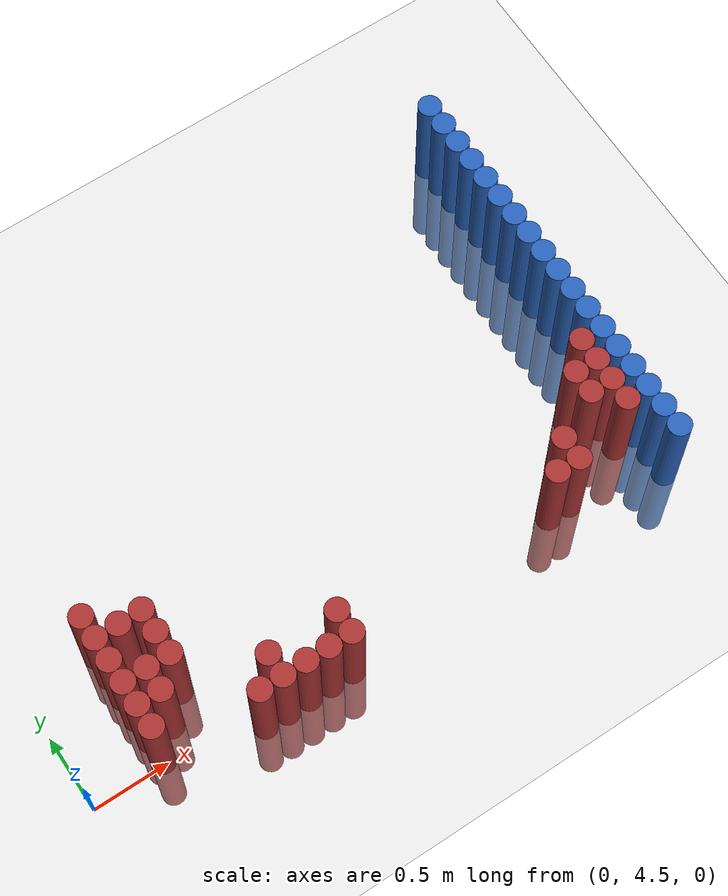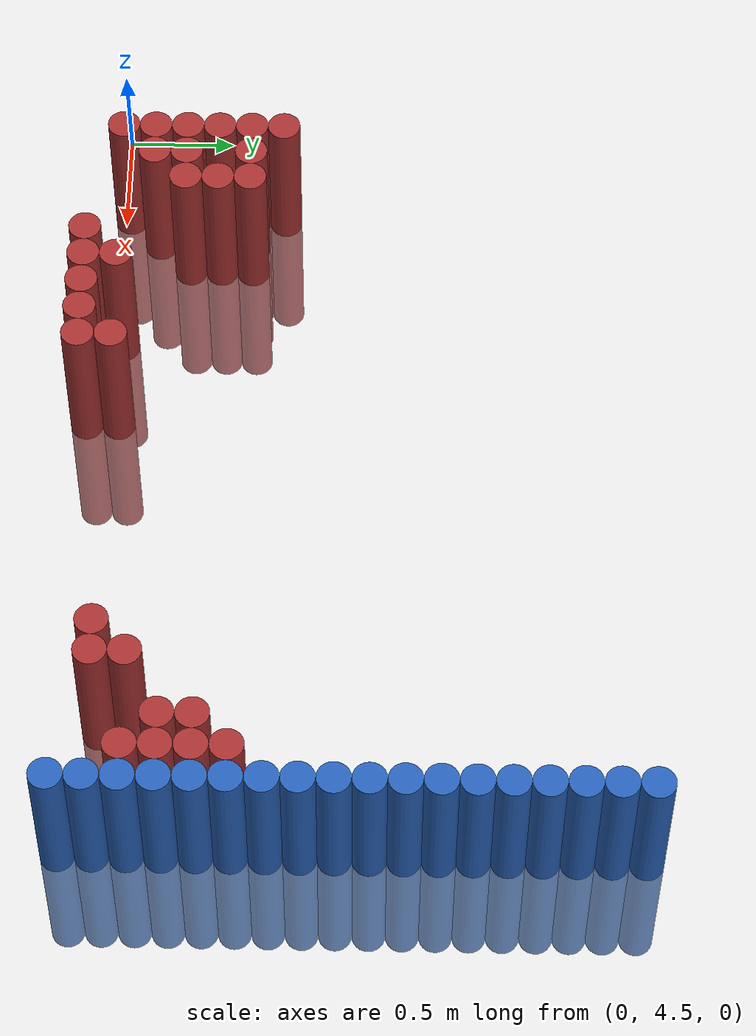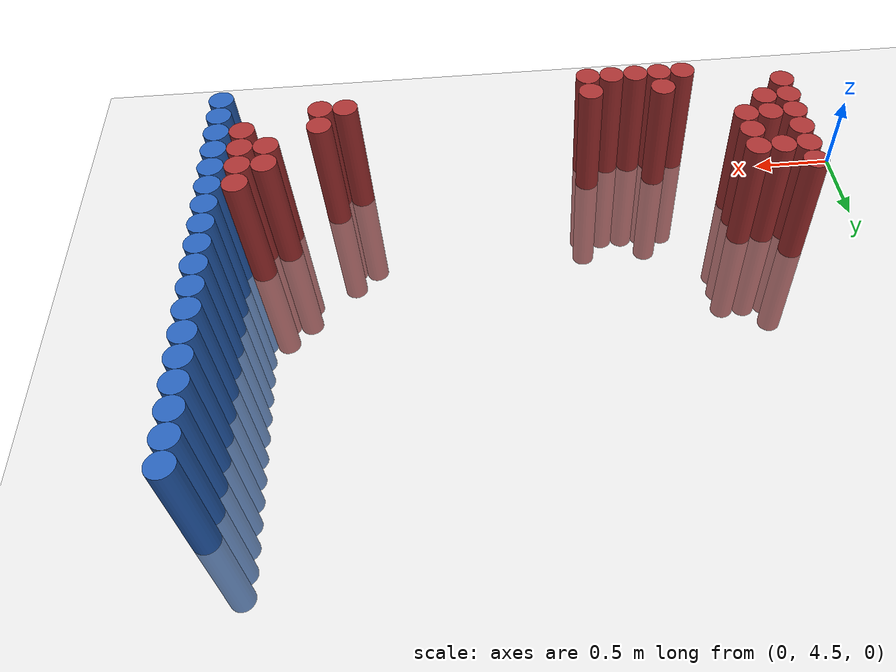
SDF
<sdf version="1.6">
 <world name="default">
  <model name="ground_plane">
   <static>1</static>
   <link name="link">
    <collision name="collision">
     <geometry><plane><normal>0 0 1</normal><size>100 100</size></plane></geometry>
     <surface><friction><ode><mu>100</mu><mu2>50</mu2></ode></friction></surface>
    </collision>
    <visual name="visual">
     <cast_shadows>0</cast_shadows>
     <geometry><plane><normal>0 0 1</normal><size>100 100</size></plane></geometry>
     <material>
      <script><uri>file://media/materials/scripts/gazebo.material</uri><name>Gazebo/Grey</name></script>
     </material>
    </visual>
   </link>
  </model>
  <model name="unit_cylinder_172">
   <static>1</static>
   <pose>3.925000 4.375000 0.000000 0.000000 0.000000 0.000000</pose>
   <link name="link">
    <inertial>
     <mass>1</mass>
     <inertia><ixx>0.145833</ixx><ixy>0</ixy><ixz>0</ixz><iyy>0.145833</iyy><iyz>0</iyz><izz>0.125</izz></inertia>
    </inertial>
    <collision name="collision">
     <geometry><cylinder><radius>0.075000</radius><length>1.5</length></cylinder></geometry>
    </collision>
    <visual name="visual">
     <geometry><cylinder><radius>0.075000</radius><length>1.5</length></cylinder></geometry>
     <material>
      <ambient>0.152000 0.379000 0.720000 1</ambient>
      <diffuse>0.152000 0.379000 0.720000 1</diffuse>
     </material>
     <material>
      <script><name>Gazebo/Grey</name><uri>file://media/materials/scripts/gazebo.material</uri></script>
     </material>
    </visual>
   </link>
  </model>
  <model name="unit_cylinder_174">
   <static>1</static>
   <pose>3.925000 4.525000 0.000000 0.000000 0.000000 0.000000</pose>
   <link name="link">
    <inertial>
     <mass>1</mass>
     <inertia><ixx>0.145833</ixx><ixy>0</ixy><ixz>0</ixz><iyy>0.145833</iyy><iyz>0</iyz><izz>0.125</izz></inertia>
    </inertial>
    <collision name="collision">
     <geometry><cylinder><radius>0.075000</radius><length>1.5</length></cylinder></geometry>
    </collision>
    <visual name="visual">
     <geometry><cylinder><radius>0.075000</radius><length>1.5</length></cylinder></geometry>
     <material>
      <ambient>0.152000 0.379000 0.720000 1</ambient>
      <diffuse>0.152000 0.379000 0.720000 1</diffuse>
     </material>
     <material>
      <script><name>Gazebo/Grey</name><uri>file://media/materials/scripts/gazebo.material</uri></script>
     </material>
    </visual>
   </link>
  </model>
  <model name="unit_cylinder_176">
   <static>1</static>
   <pose>3.925000 4.675000 0.000000 0.000000 0.000000 0.000000</pose>
   <link name="link">
    <inertial>
     <mass>1</mass>
     <inertia><ixx>0.145833</ixx><ixy>0</ixy><ixz>0</ixz><iyy>0.145833</iyy><iyz>0</iyz><izz>0.125</izz></inertia>
    </inertial>
    <collision name="collision">
     <geometry><cylinder><radius>0.075000</radius><length>1.5</length></cylinder></geometry>
    </collision>
    <visual name="visual">
     <geometry><cylinder><radius>0.075000</radius><length>1.5</length></cylinder></geometry>
     <material>
      <ambient>0.152000 0.379000 0.720000 1</ambient>
      <diffuse>0.152000 0.379000 0.720000 1</diffuse>
     </material>
     <material>
      <script><name>Gazebo/Grey</name><uri>file://media/materials/scripts/gazebo.material</uri></script>
     </material>
    </visual>
   </link>
  </model>
  <model name="unit_cylinder_178">
   <static>1</static>
   <pose>3.925000 4.825000 0.000000 0.000000 0.000000 0.000000</pose>
   <link name="link">
    <inertial>
     <mass>1</mass>
     <inertia><ixx>0.145833</ixx><ixy>0</ixy><ixz>0</ixz><iyy>0.145833</iyy><iyz>0</iyz><izz>0.125</izz></inertia>
    </inertial>
    <collision name="collision">
     <geometry><cylinder><radius>0.075000</radius><length>1.5</length></cylinder></geometry>
    </collision>
    <visual name="visual">
     <geometry><cylinder><radius>0.075000</radius><length>1.5</length></cylinder></geometry>
     <material>
      <ambient>0.152000 0.379000 0.720000 1</ambient>
      <diffuse>0.152000 0.379000 0.720000 1</diffuse>
     </material>
     <material>
      <script><name>Gazebo/Grey</name><uri>file://media/materials/scripts/gazebo.material</uri></script>
     </material>
    </visual>
   </link>
  </model>
  <model name="unit_cylinder_180">
   <static>1</static>
   <pose>3.925000 4.975000 0.000000 0.000000 0.000000 0.000000</pose>
   <link name="link">
    <inertial>
     <mass>1</mass>
     <inertia><ixx>0.145833</ixx><ixy>0</ixy><ixz>0</ixz><iyy>0.145833</iyy><iyz>0</iyz><izz>0.125</izz></inertia>
    </inertial>
    <collision name="collision">
     <geometry><cylinder><radius>0.075000</radius><length>1.5</length></cylinder></geometry>
    </collision>
    <visual name="visual">
     <geometry><cylinder><radius>0.075000</radius><length>1.5</length></cylinder></geometry>
     <material>
      <ambient>0.152000 0.379000 0.720000 1</ambient>
      <diffuse>0.152000 0.379000 0.720000 1</diffuse>
     </material>
     <material>
      <script><name>Gazebo/Grey</name><uri>file://media/materials/scripts/gazebo.material</uri></script>
     </material>
    </visual>
   </link>
  </model>
  <model name="unit_cylinder_182">
   <static>1</static>
   <pose>3.925000 5.125000 0.000000 0.000000 0.000000 0.000000</pose>
   <link name="link">
    <inertial>
     <mass>1</mass>
     <inertia><ixx>0.145833</ixx><ixy>0</ixy><ixz>0</ixz><iyy>0.145833</iyy><iyz>0</iyz><izz>0.125</izz></inertia>
    </inertial>
    <collision name="collision">
     <geometry><cylinder><radius>0.075000</radius><length>1.5</length></cylinder></geometry>
    </collision>
    <visual name="visual">
     <geometry><cylinder><radius>0.075000</radius><length>1.5</length></cylinder></geometry>
     <material>
      <ambient>0.152000 0.379000 0.720000 1</ambient>
      <diffuse>0.152000 0.379000 0.720000 1</diffuse>
     </material>
     <material>
      <script><name>Gazebo/Grey</name><uri>file://media/materials/scripts/gazebo.material</uri></script>
     </material>
    </visual>
   </link>
  </model>
  <model name="unit_cylinder_184">
   <static>1</static>
   <pose>3.925000 5.275000 0.000000 0.000000 0.000000 0.000000</pose>
   <link name="link">
    <inertial>
     <mass>1</mass>
     <inertia><ixx>0.145833</ixx><ixy>0</ixy><ixz>0</ixz><iyy>0.145833</iyy><iyz>0</iyz><izz>0.125</izz></inertia>
    </inertial>
    <collision name="collision">
     <geometry><cylinder><radius>0.075000</radius><length>1.5</length></cylinder></geometry>
    </collision>
    <visual name="visual">
     <geometry><cylinder><radius>0.075000</radius><length>1.5</length></cylinder></geometry>
     <material>
      <ambient>0.152000 0.379000 0.720000 1</ambient>
      <diffuse>0.152000 0.379000 0.720000 1</diffuse>
     </material>
     <material>
      <script><name>Gazebo/Grey</name><uri>file://media/materials/scripts/gazebo.material</uri></script>
     </material>
    </visual>
   </link>
  </model>
  <model name="unit_cylinder_186">
   <static>1</static>
   <pose>3.925000 5.425000 0.000000 0.000000 0.000000 0.000000</pose>
   <link name="link">
    <inertial>
     <mass>1</mass>
     <inertia><ixx>0.145833</ixx><ixy>0</ixy><ixz>0</ixz><iyy>0.145833</iyy><iyz>0</iyz><izz>0.125</izz></inertia>
    </inertial>
    <collision name="collision">
     <geometry><cylinder><radius>0.075000</radius><length>1.5</length></cylinder></geometry>
    </collision>
    <visual name="visual">
     <geometry><cylinder><radius>0.075000</radius><length>1.5</length></cylinder></geometry>
     <material>
      <ambient>0.152000 0.379000 0.720000 1</ambient>
      <diffuse>0.152000 0.379000 0.720000 1</diffuse>
     </material>
     <material>
      <script><name>Gazebo/Grey</name><uri>file://media/materials/scripts/gazebo.material</uri></script>
     </material>
    </visual>
   </link>
  </model>
  <model name="unit_cylinder_188">
   <static>1</static>
   <pose>3.925000 5.575000 0.000000 0.000000 0.000000 0.000000</pose>
   <link name="link">
    <inertial>
     <mass>1</mass>
     <inertia><ixx>0.145833</ixx><ixy>0</ixy><ixz>0</ixz><iyy>0.145833</iyy><iyz>0</iyz><izz>0.125</izz></inertia>
    </inertial>
    <collision name="collision">
     <geometry><cylinder><radius>0.075000</radius><length>1.5</length></cylinder></geometry>
    </collision>
    <visual name="visual">
     <geometry><cylinder><radius>0.075000</radius><length>1.5</length></cylinder></geometry>
     <material>
      <ambient>0.152000 0.379000 0.720000 1</ambient>
      <diffuse>0.152000 0.379000 0.720000 1</diffuse>
     </material>
     <material>
      <script><name>Gazebo/Grey</name><uri>file://media/materials/scripts/gazebo.material</uri></script>
     </material>
    </visual>
   </link>
  </model>
  <model name="unit_cylinder_190">
   <static>1</static>
   <pose>3.925000 5.725000 0.000000 0.000000 0.000000 0.000000</pose>
   <link name="link">
    <inertial>
     <mass>1</mass>
     <inertia><ixx>0.145833</ixx><ixy>0</ixy><ixz>0</ixz><iyy>0.145833</iyy><iyz>0</iyz><izz>0.125</izz></inertia>
    </inertial>
    <collision name="collision">
     <geometry><cylinder><radius>0.075000</radius><length>1.5</length></cylinder></geometry>
    </collision>
    <visual name="visual">
     <geometry><cylinder><radius>0.075000</radius><length>1.5</length></cylinder></geometry>
     <material>
      <ambient>0.152000 0.379000 0.720000 1</ambient>
      <diffuse>0.152000 0.379000 0.720000 1</diffuse>
     </material>
     <material>
      <script><name>Gazebo/Grey</name><uri>file://media/materials/scripts/gazebo.material</uri></script>
     </material>
    </visual>
   </link>
  </model>
  <model name="unit_cylinder_192">
   <static>1</static>
   <pose>3.925000 5.875000 0.000000 0.000000 0.000000 0.000000</pose>
   <link name="link">
    <inertial>
     <mass>1</mass>
     <inertia><ixx>0.145833</ixx><ixy>0</ixy><ixz>0</ixz><iyy>0.145833</iyy><iyz>0</iyz><izz>0.125</izz></inertia>
    </inertial>
    <collision name="collision">
     <geometry><cylinder><radius>0.075000</radius><length>1.5</length></cylinder></geometry>
    </collision>
    <visual name="visual">
     <geometry><cylinder><radius>0.075000</radius><length>1.5</length></cylinder></geometry>
     <material>
      <ambient>0.152000 0.379000 0.720000 1</ambient>
      <diffuse>0.152000 0.379000 0.720000 1</diffuse>
     </material>
     <material>
      <script><name>Gazebo/Grey</name><uri>file://media/materials/scripts/gazebo.material</uri></script>
     </material>
    </visual>
   </link>
  </model>
  <model name="unit_cylinder_194">
   <static>1</static>
   <pose>3.925000 6.025000 0.000000 0.000000 0.000000 0.000000</pose>
   <link name="link">
    <inertial>
     <mass>1</mass>
     <inertia><ixx>0.145833</ixx><ixy>0</ixy><ixz>0</ixz><iyy>0.145833</iyy><iyz>0</iyz><izz>0.125</izz></inertia>
    </inertial>
    <collision name="collision">
     <geometry><cylinder><radius>0.075000</radius><length>1.5</length></cylinder></geometry>
    </collision>
    <visual name="visual">
     <geometry><cylinder><radius>0.075000</radius><length>1.5</length></cylinder></geometry>
     <material>
      <ambient>0.152000 0.379000 0.720000 1</ambient>
      <diffuse>0.152000 0.379000 0.720000 1</diffuse>
     </material>
     <material>
      <script><name>Gazebo/Grey</name><uri>file://media/materials/scripts/gazebo.material</uri></script>
     </material>
    </visual>
   </link>
  </model>
  <model name="unit_cylinder_196">
   <static>1</static>
   <pose>3.925000 6.175000 0.000000 0.000000 0.000000 0.000000</pose>
   <link name="link">
    <inertial>
     <mass>1</mass>
     <inertia><ixx>0.145833</ixx><ixy>0</ixy><ixz>0</ixz><iyy>0.145833</iyy><iyz>0</iyz><izz>0.125</izz></inertia>
    </inertial>
    <collision name="collision">
     <geometry><cylinder><radius>0.075000</radius><length>1.5</length></cylinder></geometry>
    </collision>
    <visual name="visual">
     <geometry><cylinder><radius>0.075000</radius><length>1.5</length></cylinder></geometry>
     <material>
      <ambient>0.152000 0.379000 0.720000 1</ambient>
      <diffuse>0.152000 0.379000 0.720000 1</diffuse>
     </material>
     <material>
      <script><name>Gazebo/Grey</name><uri>file://media/materials/scripts/gazebo.material</uri></script>
     </material>
    </visual>
   </link>
  </model>
  <model name="unit_cylinder_198">
   <static>1</static>
   <pose>3.925000 6.325000 0.000000 0.000000 0.000000 0.000000</pose>
   <link name="link">
    <inertial>
     <mass>1</mass>
     <inertia><ixx>0.145833</ixx><ixy>0</ixy><ixz>0</ixz><iyy>0.145833</iyy><iyz>0</iyz><izz>0.125</izz></inertia>
    </inertial>
    <collision name="collision">
     <geometry><cylinder><radius>0.075000</radius><length>1.5</length></cylinder></geometry>
    </collision>
    <visual name="visual">
     <geometry><cylinder><radius>0.075000</radius><length>1.5</length></cylinder></geometry>
     <material>
      <ambient>0.152000 0.379000 0.720000 1</ambient>
      <diffuse>0.152000 0.379000 0.720000 1</diffuse>
     </material>
     <material>
      <script><name>Gazebo/Grey</name><uri>file://media/materials/scripts/gazebo.material</uri></script>
     </material>
    </visual>
   </link>
  </model>
  <model name="unit_cylinder_200">
   <static>1</static>
   <pose>3.925000 6.475000 0.000000 0.000000 0.000000 0.000000</pose>
   <link name="link">
    <inertial>
     <mass>1</mass>
     <inertia><ixx>0.145833</ixx><ixy>0</ixy><ixz>0</ixz><iyy>0.145833</iyy><iyz>0</iyz><izz>0.125</izz></inertia>
    </inertial>
    <collision name="collision">
     <geometry><cylinder><radius>0.075000</radius><length>1.5</length></cylinder></geometry>
    </collision>
    <visual name="visual">
     <geometry><cylinder><radius>0.075000</radius><length>1.5</length></cylinder></geometry>
     <material>
      <ambient>0.152000 0.379000 0.720000 1</ambient>
      <diffuse>0.152000 0.379000 0.720000 1</diffuse>
     </material>
     <material>
      <script><name>Gazebo/Grey</name><uri>file://media/materials/scripts/gazebo.material</uri></script>
     </material>
    </visual>
   </link>
  </model>
  <model name="unit_cylinder_202">
   <static>1</static>
   <pose>3.925000 6.625000 0.000000 0.000000 0.000000 0.000000</pose>
   <link name="link">
    <inertial>
     <mass>1</mass>
     <inertia><ixx>0.145833</ixx><ixy>0</ixy><ixz>0</ixz><iyy>0.145833</iyy><iyz>0</iyz><izz>0.125</izz></inertia>
    </inertial>
    <collision name="collision">
     <geometry><cylinder><radius>0.075000</radius><length>1.5</length></cylinder></geometry>
    </collision>
    <visual name="visual">
     <geometry><cylinder><radius>0.075000</radius><length>1.5</length></cylinder></geometry>
     <material>
      <ambient>0.152000 0.379000 0.720000 1</ambient>
      <diffuse>0.152000 0.379000 0.720000 1</diffuse>
     </material>
     <material>
      <script><name>Gazebo/Grey</name><uri>file://media/materials/scripts/gazebo.material</uri></script>
     </material>
    </visual>
   </link>
  </model>
  <model name="unit_cylinder_204">
   <static>1</static>
   <pose>3.925000 6.775000 0.000000 0.000000 0.000000 0.000000</pose>
   <link name="link">
    <inertial>
     <mass>1</mass>
     <inertia><ixx>0.145833</ixx><ixy>0</ixy><ixz>0</ixz><iyy>0.145833</iyy><iyz>0</iyz><izz>0.125</izz></inertia>
    </inertial>
    <collision name="collision">
     <geometry><cylinder><radius>0.075000</radius><length>1.5</length></cylinder></geometry>
    </collision>
    <visual name="visual">
     <geometry><cylinder><radius>0.075000</radius><length>1.5</length></cylinder></geometry>
     <material>
      <ambient>0.152000 0.379000 0.720000 1</ambient>
      <diffuse>0.152000 0.379000 0.720000 1</diffuse>
     </material>
     <material>
      <script><name>Gazebo/Grey</name><uri>file://media/materials/scripts/gazebo.material</uri></script>
     </material>
    </visual>
   </link>
  </model>
  <model name="unit_cylinder_206">
   <static>1</static>
   <pose>3.925000 6.925000 0.000000 0.000000 0.000000 0.000000</pose>
   <link name="link">
    <inertial>
     <mass>1</mass>
     <inertia><ixx>0.145833</ixx><ixy>0</ixy><ixz>0</ixz><iyy>0.145833</iyy><iyz>0</iyz><izz>0.125</izz></inertia>
    </inertial>
    <collision name="collision">
     <geometry><cylinder><radius>0.075000</radius><length>1.5</length></cylinder></geometry>
    </collision>
    <visual name="visual">
     <geometry><cylinder><radius>0.075000</radius><length>1.5</length></cylinder></geometry>
     <material>
      <ambient>0.152000 0.379000 0.720000 1</ambient>
      <diffuse>0.152000 0.379000 0.720000 1</diffuse>
     </material>
     <material>
      <script><name>Gazebo/Grey</name><uri>file://media/materials/scripts/gazebo.material</uri></script>
     </material>
    </visual>
   </link>
  </model>
  <model name="unit_cylinder_395">
   <static>1</static>
   <pose>0.475000 4.525000 0.000000 0.000000 0.000000 0.000000</pose>
   <link name="link">
    <inertial>
     <mass>1</mass>
     <inertia><ixx>0.145833</ixx><ixy>0</ixy><ixz>0</ixz><iyy>0.145833</iyy><iyz>0</iyz><izz>0.125</izz></inertia>
    </inertial>
    <collision name="collision">
     <geometry><cylinder><radius>0.075000</radius><length>1.5</length></cylinder></geometry>
    </collision>
    <visual name="visual">
     <geometry><cylinder><radius>0.075000</radius><length>1.5</length></cylinder></geometry>
     <material>
      <ambient>0.648000 0.192000 0.192000 1</ambient>
      <diffuse>0.648000 0.192000 0.192000 1</diffuse>
     </material>
     <material>
      <script><name>Gazebo/Grey</name><uri>file://media/materials/scripts/gazebo.material</uri></script>
     </material>
    </visual>
   </link>
  </model>
  <model name="unit_cylinder_396">
   <static>1</static>
   <pose>0.475000 4.675000 0.000000 0.000000 0.000000 0.000000</pose>
   <link name="link">
    <inertial>
     <mass>1</mass>
     <inertia><ixx>0.145833</ixx><ixy>0</ixy><ixz>0</ixz><iyy>0.145833</iyy><iyz>0</iyz><izz>0.125</izz></inertia>
    </inertial>
    <collision name="collision">
     <geometry><cylinder><radius>0.075000</radius><length>1.5</length></cylinder></geometry>
    </collision>
    <visual name="visual">
     <geometry><cylinder><radius>0.075000</radius><length>1.5</length></cylinder></geometry>
     <material>
      <ambient>0.648000 0.192000 0.192000 1</ambient>
      <diffuse>0.648000 0.192000 0.192000 1</diffuse>
     </material>
     <material>
      <script><name>Gazebo/Grey</name><uri>file://media/materials/scripts/gazebo.material</uri></script>
     </material>
    </visual>
   </link>
  </model>
  <model name="unit_cylinder_397">
   <static>1</static>
   <pose>0.475000 4.825000 0.000000 0.000000 0.000000 0.000000</pose>
   <link name="link">
    <inertial>
     <mass>1</mass>
     <inertia><ixx>0.145833</ixx><ixy>0</ixy><ixz>0</ixz><iyy>0.145833</iyy><iyz>0</iyz><izz>0.125</izz></inertia>
    </inertial>
    <collision name="collision">
     <geometry><cylinder><radius>0.075000</radius><length>1.5</length></cylinder></geometry>
    </collision>
    <visual name="visual">
     <geometry><cylinder><radius>0.075000</radius><length>1.5</length></cylinder></geometry>
     <material>
      <ambient>0.648000 0.192000 0.192000 1</ambient>
      <diffuse>0.648000 0.192000 0.192000 1</diffuse>
     </material>
     <material>
      <script><name>Gazebo/Grey</name><uri>file://media/materials/scripts/gazebo.material</uri></script>
     </material>
    </visual>
   </link>
  </model>
  <model name="unit_cylinder_398">
   <static>1</static>
   <pose>0.475000 4.975000 0.000000 0.000000 0.000000 0.000000</pose>
   <link name="link">
    <inertial>
     <mass>1</mass>
     <inertia><ixx>0.145833</ixx><ixy>0</ixy><ixz>0</ixz><iyy>0.145833</iyy><iyz>0</iyz><izz>0.125</izz></inertia>
    </inertial>
    <collision name="collision">
     <geometry><cylinder><radius>0.075000</radius><length>1.5</length></cylinder></geometry>
    </collision>
    <visual name="visual">
     <geometry><cylinder><radius>0.075000</radius><length>1.5</length></cylinder></geometry>
     <material>
      <ambient>0.648000 0.192000 0.192000 1</ambient>
      <diffuse>0.648000 0.192000 0.192000 1</diffuse>
     </material>
     <material>
      <script><name>Gazebo/Grey</name><uri>file://media/materials/scripts/gazebo.material</uri></script>
     </material>
    </visual>
   </link>
  </model>
  <model name="unit_cylinder_399">
   <static>1</static>
   <pose>0.475000 5.125000 0.000000 0.000000 0.000000 0.000000</pose>
   <link name="link">
    <inertial>
     <mass>1</mass>
     <inertia><ixx>0.145833</ixx><ixy>0</ixy><ixz>0</ixz><iyy>0.145833</iyy><iyz>0</iyz><izz>0.125</izz></inertia>
    </inertial>
    <collision name="collision">
     <geometry><cylinder><radius>0.075000</radius><length>1.5</length></cylinder></geometry>
    </collision>
    <visual name="visual">
     <geometry><cylinder><radius>0.075000</radius><length>1.5</length></cylinder></geometry>
     <material>
      <ambient>0.648000 0.192000 0.192000 1</ambient>
      <diffuse>0.648000 0.192000 0.192000 1</diffuse>
     </material>
     <material>
      <script><name>Gazebo/Grey</name><uri>file://media/materials/scripts/gazebo.material</uri></script>
     </material>
    </visual>
   </link>
  </model>
  <model name="unit_cylinder_400">
   <static>1</static>
   <pose>0.475000 5.275000 0.000000 0.000000 0.000000 0.000000</pose>
   <link name="link">
    <inertial>
     <mass>1</mass>
     <inertia><ixx>0.145833</ixx><ixy>0</ixy><ixz>0</ixz><iyy>0.145833</iyy><iyz>0</iyz><izz>0.125</izz></inertia>
    </inertial>
    <collision name="collision">
     <geometry><cylinder><radius>0.075000</radius><length>1.5</length></cylinder></geometry>
    </collision>
    <visual name="visual">
     <geometry><cylinder><radius>0.075000</radius><length>1.5</length></cylinder></geometry>
     <material>
      <ambient>0.648000 0.192000 0.192000 1</ambient>
      <diffuse>0.648000 0.192000 0.192000 1</diffuse>
     </material>
     <material>
      <script><name>Gazebo/Grey</name><uri>file://media/materials/scripts/gazebo.material</uri></script>
     </material>
    </visual>
   </link>
  </model>
  <model name="unit_cylinder_403">
   <static>1</static>
   <pose>0.625000 4.675000 0.000000 0.000000 0.000000 0.000000</pose>
   <link name="link">
    <inertial>
     <mass>1</mass>
     <inertia><ixx>0.145833</ixx><ixy>0</ixy><ixz>0</ixz><iyy>0.145833</iyy><iyz>0</iyz><izz>0.125</izz></inertia>
    </inertial>
    <collision name="collision">
     <geometry><cylinder><radius>0.075000</radius><length>1.5</length></cylinder></geometry>
    </collision>
    <visual name="visual">
     <geometry><cylinder><radius>0.075000</radius><length>1.5</length></cylinder></geometry>
     <material>
      <ambient>0.648000 0.192000 0.192000 1</ambient>
      <diffuse>0.648000 0.192000 0.192000 1</diffuse>
     </material>
     <material>
      <script><name>Gazebo/Grey</name><uri>file://media/materials/scripts/gazebo.material</uri></script>
     </material>
    </visual>
   </link>
  </model>
  <model name="unit_cylinder_404">
   <static>1</static>
   <pose>0.625000 4.825000 0.000000 0.000000 0.000000 0.000000</pose>
   <link name="link">
    <inertial>
     <mass>1</mass>
     <inertia><ixx>0.145833</ixx><ixy>0</ixy><ixz>0</ixz><iyy>0.145833</iyy><iyz>0</iyz><izz>0.125</izz></inertia>
    </inertial>
    <collision name="collision">
     <geometry><cylinder><radius>0.075000</radius><length>1.5</length></cylinder></geometry>
    </collision>
    <visual name="visual">
     <geometry><cylinder><radius>0.075000</radius><length>1.5</length></cylinder></geometry>
     <material>
      <ambient>0.648000 0.192000 0.192000 1</ambient>
      <diffuse>0.648000 0.192000 0.192000 1</diffuse>
     </material>
     <material>
      <script><name>Gazebo/Grey</name><uri>file://media/materials/scripts/gazebo.material</uri></script>
     </material>
    </visual>
   </link>
  </model>
  <model name="unit_cylinder_405">
   <static>1</static>
   <pose>0.625000 5.125000 0.000000 0.000000 0.000000 0.000000</pose>
   <link name="link">
    <inertial>
     <mass>1</mass>
     <inertia><ixx>0.145833</ixx><ixy>0</ixy><ixz>0</ixz><iyy>0.145833</iyy><iyz>0</iyz><izz>0.125</izz></inertia>
    </inertial>
    <collision name="collision">
     <geometry><cylinder><radius>0.075000</radius><length>1.5</length></cylinder></geometry>
    </collision>
    <visual name="visual">
     <geometry><cylinder><radius>0.075000</radius><length>1.5</length></cylinder></geometry>
     <material>
      <ambient>0.648000 0.192000 0.192000 1</ambient>
      <diffuse>0.648000 0.192000 0.192000 1</diffuse>
     </material>
     <material>
      <script><name>Gazebo/Grey</name><uri>file://media/materials/scripts/gazebo.material</uri></script>
     </material>
    </visual>
   </link>
  </model>
  <model name="unit_cylinder_406">
   <static>1</static>
   <pose>0.775000 4.825000 0.000000 0.000000 0.000000 0.000000</pose>
   <link name="link">
    <inertial>
     <mass>1</mass>
     <inertia><ixx>0.145833</ixx><ixy>0</ixy><ixz>0</ixz><iyy>0.145833</iyy><iyz>0</iyz><izz>0.125</izz></inertia>
    </inertial>
    <collision name="collision">
     <geometry><cylinder><radius>0.075000</radius><length>1.5</length></cylinder></geometry>
    </collision>
    <visual name="visual">
     <geometry><cylinder><radius>0.075000</radius><length>1.5</length></cylinder></geometry>
     <material>
      <ambient>0.648000 0.192000 0.192000 1</ambient>
      <diffuse>0.648000 0.192000 0.192000 1</diffuse>
     </material>
     <material>
      <script><name>Gazebo/Grey</name><uri>file://media/materials/scripts/gazebo.material</uri></script>
     </material>
    </visual>
   </link>
  </model>
  <model name="unit_cylinder_407">
   <static>1</static>
   <pose>0.775000 4.975000 0.000000 0.000000 0.000000 0.000000</pose>
   <link name="link">
    <inertial>
     <mass>1</mass>
     <inertia><ixx>0.145833</ixx><ixy>0</ixy><ixz>0</ixz><iyy>0.145833</iyy><iyz>0</iyz><izz>0.125</izz></inertia>
    </inertial>
    <collision name="collision">
     <geometry><cylinder><radius>0.075000</radius><length>1.5</length></cylinder></geometry>
    </collision>
    <visual name="visual">
     <geometry><cylinder><radius>0.075000</radius><length>1.5</length></cylinder></geometry>
     <material>
      <ambient>0.648000 0.192000 0.192000 1</ambient>
      <diffuse>0.648000 0.192000 0.192000 1</diffuse>
     </material>
     <material>
      <script><name>Gazebo/Grey</name><uri>file://media/materials/scripts/gazebo.material</uri></script>
     </material>
    </visual>
   </link>
  </model>
  <model name="unit_cylinder_408">
   <static>1</static>
   <pose>0.775000 5.125000 0.000000 0.000000 0.000000 0.000000</pose>
   <link name="link">
    <inertial>
     <mass>1</mass>
     <inertia><ixx>0.145833</ixx><ixy>0</ixy><ixz>0</ixz><iyy>0.145833</iyy><iyz>0</iyz><izz>0.125</izz></inertia>
    </inertial>
    <collision name="collision">
     <geometry><cylinder><radius>0.075000</radius><length>1.5</length></cylinder></geometry>
    </collision>
    <visual name="visual">
     <geometry><cylinder><radius>0.075000</radius><length>1.5</length></cylinder></geometry>
     <material>
      <ambient>0.648000 0.192000 0.192000 1</ambient>
      <diffuse>0.648000 0.192000 0.192000 1</diffuse>
     </material>
     <material>
      <script><name>Gazebo/Grey</name><uri>file://media/materials/scripts/gazebo.material</uri></script>
     </material>
    </visual>
   </link>
  </model>
  <model name="unit_cylinder_414">
   <static>1</static>
   <pose>1.075000 4.375000 0.000000 0.000000 0.000000 0.000000</pose>
   <link name="link">
    <inertial>
     <mass>1</mass>
     <inertia><ixx>0.145833</ixx><ixy>0</ixy><ixz>0</ixz><iyy>0.145833</iyy><iyz>0</iyz><izz>0.125</izz></inertia>
    </inertial>
    <collision name="collision">
     <geometry><cylinder><radius>0.075000</radius><length>1.5</length></cylinder></geometry>
    </collision>
    <visual name="visual">
     <geometry><cylinder><radius>0.075000</radius><length>1.5</length></cylinder></geometry>
     <material>
      <ambient>0.648000 0.192000 0.192000 1</ambient>
      <diffuse>0.648000 0.192000 0.192000 1</diffuse>
     </material>
     <material>
      <script><name>Gazebo/Grey</name><uri>file://media/materials/scripts/gazebo.material</uri></script>
     </material>
    </visual>
   </link>
  </model>
  <model name="unit_cylinder_419">
   <static>1</static>
   <pose>1.225000 4.375000 0.000000 0.000000 0.000000 0.000000</pose>
   <link name="link">
    <inertial>
     <mass>1</mass>
     <inertia><ixx>0.145833</ixx><ixy>0</ixy><ixz>0</ixz><iyy>0.145833</iyy><iyz>0</iyz><izz>0.125</izz></inertia>
    </inertial>
    <collision name="collision">
     <geometry><cylinder><radius>0.075000</radius><length>1.5</length></cylinder></geometry>
    </collision>
    <visual name="visual">
     <geometry><cylinder><radius>0.075000</radius><length>1.5</length></cylinder></geometry>
     <material>
      <ambient>0.648000 0.192000 0.192000 1</ambient>
      <diffuse>0.648000 0.192000 0.192000 1</diffuse>
     </material>
     <material>
      <script><name>Gazebo/Grey</name><uri>file://media/materials/scripts/gazebo.material</uri></script>
     </material>
    </visual>
   </link>
  </model>
  <model name="unit_cylinder_420">
   <static>1</static>
   <pose>1.225000 4.525000 0.000000 0.000000 0.000000 0.000000</pose>
   <link name="link">
    <inertial>
     <mass>1</mass>
     <inertia><ixx>0.145833</ixx><ixy>0</ixy><ixz>0</ixz><iyy>0.145833</iyy><iyz>0</iyz><izz>0.125</izz></inertia>
    </inertial>
    <collision name="collision">
     <geometry><cylinder><radius>0.075000</radius><length>1.5</length></cylinder></geometry>
    </collision>
    <visual name="visual">
     <geometry><cylinder><radius>0.075000</radius><length>1.5</length></cylinder></geometry>
     <material>
      <ambient>0.648000 0.192000 0.192000 1</ambient>
      <diffuse>0.648000 0.192000 0.192000 1</diffuse>
     </material>
     <material>
      <script><name>Gazebo/Grey</name><uri>file://media/materials/scripts/gazebo.material</uri></script>
     </material>
    </visual>
   </link>
  </model>
  <model name="unit_cylinder_424">
   <static>1</static>
   <pose>1.375000 4.375000 0.000000 0.000000 0.000000 0.000000</pose>
   <link name="link">
    <inertial>
     <mass>1</mass>
     <inertia><ixx>0.145833</ixx><ixy>0</ixy><ixz>0</ixz><iyy>0.145833</iyy><iyz>0</iyz><izz>0.125</izz></inertia>
    </inertial>
    <collision name="collision">
     <geometry><cylinder><radius>0.075000</radius><length>1.5</length></cylinder></geometry>
    </collision>
    <visual name="visual">
     <geometry><cylinder><radius>0.075000</radius><length>1.5</length></cylinder></geometry>
     <material>
      <ambient>0.648000 0.192000 0.192000 1</ambient>
      <diffuse>0.648000 0.192000 0.192000 1</diffuse>
     </material>
     <material>
      <script><name>Gazebo/Grey</name><uri>file://media/materials/scripts/gazebo.material</uri></script>
     </material>
    </visual>
   </link>
  </model>
  <model name="unit_cylinder_427">
   <static>1</static>
   <pose>1.525000 4.375000 0.000000 0.000000 0.000000 0.000000</pose>
   <link name="link">
    <inertial>
     <mass>1</mass>
     <inertia><ixx>0.145833</ixx><ixy>0</ixy><ixz>0</ixz><iyy>0.145833</iyy><iyz>0</iyz><izz>0.125</izz></inertia>
    </inertial>
    <collision name="collision">
     <geometry><cylinder><radius>0.075000</radius><length>1.5</length></cylinder></geometry>
    </collision>
    <visual name="visual">
     <geometry><cylinder><radius>0.075000</radius><length>1.5</length></cylinder></geometry>
     <material>
      <ambient>0.648000 0.192000 0.192000 1</ambient>
      <diffuse>0.648000 0.192000 0.192000 1</diffuse>
     </material>
     <material>
      <script><name>Gazebo/Grey</name><uri>file://media/materials/scripts/gazebo.material</uri></script>
     </material>
    </visual>
   </link>
  </model>
  <model name="unit_cylinder_431">
   <static>1</static>
   <pose>1.675000 4.375000 0.000000 0.000000 0.000000 0.000000</pose>
   <link name="link">
    <inertial>
     <mass>1</mass>
     <inertia><ixx>0.145833</ixx><ixy>0</ixy><ixz>0</ixz><iyy>0.145833</iyy><iyz>0</iyz><izz>0.125</izz></inertia>
    </inertial>
    <collision name="collision">
     <geometry><cylinder><radius>0.075000</radius><length>1.5</length></cylinder></geometry>
    </collision>
    <visual name="visual">
     <geometry><cylinder><radius>0.075000</radius><length>1.5</length></cylinder></geometry>
     <material>
      <ambient>0.648000 0.192000 0.192000 1</ambient>
      <diffuse>0.648000 0.192000 0.192000 1</diffuse>
     </material>
     <material>
      <script><name>Gazebo/Grey</name><uri>file://media/materials/scripts/gazebo.material</uri></script>
     </material>
    </visual>
   </link>
  </model>
  <model name="unit_cylinder_432">
   <static>1</static>
   <pose>1.675000 4.525000 0.000000 0.000000 0.000000 0.000000</pose>
   <link name="link">
    <inertial>
     <mass>1</mass>
     <inertia><ixx>0.145833</ixx><ixy>0</ixy><ixz>0</ixz><iyy>0.145833</iyy><iyz>0</iyz><izz>0.125</izz></inertia>
    </inertial>
    <collision name="collision">
     <geometry><cylinder><radius>0.075000</radius><length>1.5</length></cylinder></geometry>
    </collision>
    <visual name="visual">
     <geometry><cylinder><radius>0.075000</radius><length>1.5</length></cylinder></geometry>
     <material>
      <ambient>0.648000 0.192000 0.192000 1</ambient>
      <diffuse>0.648000 0.192000 0.192000 1</diffuse>
     </material>
     <material>
      <script><name>Gazebo/Grey</name><uri>file://media/materials/scripts/gazebo.material</uri></script>
     </material>
    </visual>
   </link>
  </model>
  <model name="unit_cylinder_485">
   <static>1</static>
   <pose>3.175000 4.525000 0.000000 0.000000 0.000000 0.000000</pose>
   <link name="link">
    <inertial>
     <mass>1</mass>
     <inertia><ixx>0.145833</ixx><ixy>0</ixy><ixz>0</ixz><iyy>0.145833</iyy><iyz>0</iyz><izz>0.125</izz></inertia>
    </inertial>
    <collision name="collision">
     <geometry><cylinder><radius>0.075000</radius><length>1.5</length></cylinder></geometry>
    </collision>
    <visual name="visual">
     <geometry><cylinder><radius>0.075000</radius><length>1.5</length></cylinder></geometry>
     <material>
      <ambient>0.648000 0.192000 0.192000 1</ambient>
      <diffuse>0.648000 0.192000 0.192000 1</diffuse>
     </material>
     <material>
      <script><name>Gazebo/Grey</name><uri>file://media/materials/scripts/gazebo.material</uri></script>
     </material>
    </visual>
   </link>
  </model>
  <model name="unit_cylinder_498">
   <static>1</static>
   <pose>3.325000 4.525000 0.000000 0.000000 0.000000 0.000000</pose>
   <link name="link">
    <inertial>
     <mass>1</mass>
     <inertia><ixx>0.145833</ixx><ixy>0</ixy><ixz>0</ixz><iyy>0.145833</iyy><iyz>0</iyz><izz>0.125</izz></inertia>
    </inertial>
    <collision name="collision">
     <geometry><cylinder><radius>0.075000</radius><length>1.5</length></cylinder></geometry>
    </collision>
    <visual name="visual">
     <geometry><cylinder><radius>0.075000</radius><length>1.5</length></cylinder></geometry>
     <material>
      <ambient>0.648000 0.192000 0.192000 1</ambient>
      <diffuse>0.648000 0.192000 0.192000 1</diffuse>
     </material>
     <material>
      <script><name>Gazebo/Grey</name><uri>file://media/materials/scripts/gazebo.material</uri></script>
     </material>
    </visual>
   </link>
  </model>
  <model name="unit_cylinder_499">
   <static>1</static>
   <pose>3.325000 4.675000 0.000000 0.000000 0.000000 0.000000</pose>
   <link name="link">
    <inertial>
     <mass>1</mass>
     <inertia><ixx>0.145833</ixx><ixy>0</ixy><ixz>0</ixz><iyy>0.145833</iyy><iyz>0</iyz><izz>0.125</izz></inertia>
    </inertial>
    <collision name="collision">
     <geometry><cylinder><radius>0.075000</radius><length>1.5</length></cylinder></geometry>
    </collision>
    <visual name="visual">
     <geometry><cylinder><radius>0.075000</radius><length>1.5</length></cylinder></geometry>
     <material>
      <ambient>0.648000 0.192000 0.192000 1</ambient>
      <diffuse>0.648000 0.192000 0.192000 1</diffuse>
     </material>
     <material>
      <script><name>Gazebo/Grey</name><uri>file://media/materials/scripts/gazebo.material</uri></script>
     </material>
    </visual>
   </link>
  </model>
  <model name="unit_cylinder_514">
   <static>1</static>
   <pose>3.625000 4.825000 0.000000 0.000000 0.000000 0.000000</pose>
   <link name="link">
    <inertial>
     <mass>1</mass>
     <inertia><ixx>0.145833</ixx><ixy>0</ixy><ixz>0</ixz><iyy>0.145833</iyy><iyz>0</iyz><izz>0.125</izz></inertia>
    </inertial>
    <collision name="collision">
     <geometry><cylinder><radius>0.075000</radius><length>1.5</length></cylinder></geometry>
    </collision>
    <visual name="visual">
     <geometry><cylinder><radius>0.075000</radius><length>1.5</length></cylinder></geometry>
     <material>
      <ambient>0.648000 0.192000 0.192000 1</ambient>
      <diffuse>0.648000 0.192000 0.192000 1</diffuse>
     </material>
     <material>
      <script><name>Gazebo/Grey</name><uri>file://media/materials/scripts/gazebo.material</uri></script>
     </material>
    </visual>
   </link>
  </model>
  <model name="unit_cylinder_515">
   <static>1</static>
   <pose>3.625000 4.975000 0.000000 0.000000 0.000000 0.000000</pose>
   <link name="link">
    <inertial>
     <mass>1</mass>
     <inertia><ixx>0.145833</ixx><ixy>0</ixy><ixz>0</ixz><iyy>0.145833</iyy><iyz>0</iyz><izz>0.125</izz></inertia>
    </inertial>
    <collision name="collision">
     <geometry><cylinder><radius>0.075000</radius><length>1.5</length></cylinder></geometry>
    </collision>
    <visual name="visual">
     <geometry><cylinder><radius>0.075000</radius><length>1.5</length></cylinder></geometry>
     <material>
      <ambient>0.648000 0.192000 0.192000 1</ambient>
      <diffuse>0.648000 0.192000 0.192000 1</diffuse>
     </material>
     <material>
      <script><name>Gazebo/Grey</name><uri>file://media/materials/scripts/gazebo.material</uri></script>
     </material>
    </visual>
   </link>
  </model>
  <model name="unit_cylinder_535">
   <static>1</static>
   <pose>3.775000 4.675000 0.000000 0.000000 0.000000 0.000000</pose>
   <link name="link">
    <inertial>
     <mass>1</mass>
     <inertia><ixx>0.145833</ixx><ixy>0</ixy><ixz>0</ixz><iyy>0.145833</iyy><iyz>0</iyz><izz>0.125</izz></inertia>
    </inertial>
    <collision name="collision">
     <geometry><cylinder><radius>0.075000</radius><length>1.5</length></cylinder></geometry>
    </collision>
    <visual name="visual">
     <geometry><cylinder><radius>0.075000</radius><length>1.5</length></cylinder></geometry>
     <material>
      <ambient>0.648000 0.192000 0.192000 1</ambient>
      <diffuse>0.648000 0.192000 0.192000 1</diffuse>
     </material>
     <material>
      <script><name>Gazebo/Grey</name><uri>file://media/materials/scripts/gazebo.material</uri></script>
     </material>
    </visual>
   </link>
  </model>
  <model name="unit_cylinder_536">
   <static>1</static>
   <pose>3.775000 4.825000 0.000000 0.000000 0.000000 0.000000</pose>
   <link name="link">
    <inertial>
     <mass>1</mass>
     <inertia><ixx>0.145833</ixx><ixy>0</ixy><ixz>0</ixz><iyy>0.145833</iyy><iyz>0</iyz><izz>0.125</izz></inertia>
    </inertial>
    <collision name="collision">
     <geometry><cylinder><radius>0.075000</radius><length>1.5</length></cylinder></geometry>
    </collision>
    <visual name="visual">
     <geometry><cylinder><radius>0.075000</radius><length>1.5</length></cylinder></geometry>
     <material>
      <ambient>0.648000 0.192000 0.192000 1</ambient>
      <diffuse>0.648000 0.192000 0.192000 1</diffuse>
     </material>
     <material>
      <script><name>Gazebo/Grey</name><uri>file://media/materials/scripts/gazebo.material</uri></script>
     </material>
    </visual>
   </link>
  </model>
  <model name="unit_cylinder_537">
   <static>1</static>
   <pose>3.775000 4.975000 0.000000 0.000000 0.000000 0.000000</pose>
   <link name="link">
    <inertial>
     <mass>1</mass>
     <inertia><ixx>0.145833</ixx><ixy>0</ixy><ixz>0</ixz><iyy>0.145833</iyy><iyz>0</iyz><izz>0.125</izz></inertia>
    </inertial>
    <collision name="collision">
     <geometry><cylinder><radius>0.075000</radius><length>1.5</length></cylinder></geometry>
    </collision>
    <visual name="visual">
     <geometry><cylinder><radius>0.075000</radius><length>1.5</length></cylinder></geometry>
     <material>
      <ambient>0.648000 0.192000 0.192000 1</ambient>
      <diffuse>0.648000 0.192000 0.192000 1</diffuse>
     </material>
     <material>
      <script><name>Gazebo/Grey</name><uri>file://media/materials/scripts/gazebo.material</uri></script>
     </material>
    </visual>
   </link>
  </model>
  <model name="unit_cylinder_538">
   <static>1</static>
   <pose>3.775000 5.125000 0.000000 0.000000 0.000000 0.000000</pose>
   <link name="link">
    <inertial>
     <mass>1</mass>
     <inertia><ixx>0.145833</ixx><ixy>0</ixy><ixz>0</ixz><iyy>0.145833</iyy><iyz>0</iyz><izz>0.125</izz></inertia>
    </inertial>
    <collision name="collision">
     <geometry><cylinder><radius>0.075000</radius><length>1.5</length></cylinder></geometry>
    </collision>
    <visual name="visual">
     <geometry><cylinder><radius>0.075000</radius><length>1.5</length></cylinder></geometry>
     <material>
      <ambient>0.648000 0.192000 0.192000 1</ambient>
      <diffuse>0.648000 0.192000 0.192000 1</diffuse>
     </material>
     <material>
      <script><name>Gazebo/Grey</name><uri>file://media/materials/scripts/gazebo.material</uri></script>
     </material>
    </visual>
   </link>
  </model>
  <model name="unit_cylinder_581">
   <static>1</static>
   <pose>3.925000 4.375000 0.000000 0.000000 0.000000 0.000000</pose>
   <link name="link">
    <inertial>
     <mass>1</mass>
     <inertia><ixx>0.145833</ixx><ixy>0</ixy><ixz>0</ixz><iyy>0.145833</iyy><iyz>0</iyz><izz>0.125</izz></inertia>
    </inertial>
    <collision name="collision">
     <geometry><cylinder><radius>0.075000</radius><length>1.5</length></cylinder></geometry>
    </collision>
    <visual name="visual">
     <geometry><cylinder><radius>0.075000</radius><length>1.5</length></cylinder></geometry>
     <material>
      <ambient>0.152000 0.379000 0.720000 1</ambient>
      <diffuse>0.152000 0.379000 0.720000 1</diffuse>
     </material>
     <material>
      <script><name>Gazebo/Grey</name><uri>file://media/materials/scripts/gazebo.material</uri></script>
     </material>
    </visual>
   </link>
  </model>
  <model name="unit_cylinder_582">
   <static>1</static>
   <pose>3.925000 4.525000 0.000000 0.000000 0.000000 0.000000</pose>
   <link name="link">
    <inertial>
     <mass>1</mass>
     <inertia><ixx>0.145833</ixx><ixy>0</ixy><ixz>0</ixz><iyy>0.145833</iyy><iyz>0</iyz><izz>0.125</izz></inertia>
    </inertial>
    <collision name="collision">
     <geometry><cylinder><radius>0.075000</radius><length>1.5</length></cylinder></geometry>
    </collision>
    <visual name="visual">
     <geometry><cylinder><radius>0.075000</radius><length>1.5</length></cylinder></geometry>
     <material>
      <ambient>0.152000 0.379000 0.720000 1</ambient>
      <diffuse>0.152000 0.379000 0.720000 1</diffuse>
     </material>
     <material>
      <script><name>Gazebo/Grey</name><uri>file://media/materials/scripts/gazebo.material</uri></script>
     </material>
    </visual>
   </link>
  </model>
  <model name="unit_cylinder_583">
   <static>1</static>
   <pose>3.925000 4.675000 0.000000 0.000000 0.000000 0.000000</pose>
   <link name="link">
    <inertial>
     <mass>1</mass>
     <inertia><ixx>0.145833</ixx><ixy>0</ixy><ixz>0</ixz><iyy>0.145833</iyy><iyz>0</iyz><izz>0.125</izz></inertia>
    </inertial>
    <collision name="collision">
     <geometry><cylinder><radius>0.075000</radius><length>1.5</length></cylinder></geometry>
    </collision>
    <visual name="visual">
     <geometry><cylinder><radius>0.075000</radius><length>1.5</length></cylinder></geometry>
     <material>
      <ambient>0.152000 0.379000 0.720000 1</ambient>
      <diffuse>0.152000 0.379000 0.720000 1</diffuse>
     </material>
     <material>
      <script><name>Gazebo/Grey</name><uri>file://media/materials/scripts/gazebo.material</uri></script>
     </material>
    </visual>
   </link>
  </model>
  <model name="unit_cylinder_584">
   <static>1</static>
   <pose>3.925000 4.825000 0.000000 0.000000 0.000000 0.000000</pose>
   <link name="link">
    <inertial>
     <mass>1</mass>
     <inertia><ixx>0.145833</ixx><ixy>0</ixy><ixz>0</ixz><iyy>0.145833</iyy><iyz>0</iyz><izz>0.125</izz></inertia>
    </inertial>
    <collision name="collision">
     <geometry><cylinder><radius>0.075000</radius><length>1.5</length></cylinder></geometry>
    </collision>
    <visual name="visual">
     <geometry><cylinder><radius>0.075000</radius><length>1.5</length></cylinder></geometry>
     <material>
      <ambient>0.152000 0.379000 0.720000 1</ambient>
      <diffuse>0.152000 0.379000 0.720000 1</diffuse>
     </material>
     <material>
      <script><name>Gazebo/Grey</name><uri>file://media/materials/scripts/gazebo.material</uri></script>
     </material>
    </visual>
   </link>
  </model>
  <model name="unit_cylinder_585">
   <static>1</static>
   <pose>3.925000 4.975000 0.000000 0.000000 0.000000 0.000000</pose>
   <link name="link">
    <inertial>
     <mass>1</mass>
     <inertia><ixx>0.145833</ixx><ixy>0</ixy><ixz>0</ixz><iyy>0.145833</iyy><iyz>0</iyz><izz>0.125</izz></inertia>
    </inertial>
    <collision name="collision">
     <geometry><cylinder><radius>0.075000</radius><length>1.5</length></cylinder></geometry>
    </collision>
    <visual name="visual">
     <geometry><cylinder><radius>0.075000</radius><length>1.5</length></cylinder></geometry>
     <material>
      <ambient>0.152000 0.379000 0.720000 1</ambient>
      <diffuse>0.152000 0.379000 0.720000 1</diffuse>
     </material>
     <material>
      <script><name>Gazebo/Grey</name><uri>file://media/materials/scripts/gazebo.material</uri></script>
     </material>
    </visual>
   </link>
  </model>
  <model name="unit_cylinder_586">
   <static>1</static>
   <pose>3.925000 5.125000 0.000000 0.000000 0.000000 0.000000</pose>
   <link name="link">
    <inertial>
     <mass>1</mass>
     <inertia><ixx>0.145833</ixx><ixy>0</ixy><ixz>0</ixz><iyy>0.145833</iyy><iyz>0</iyz><izz>0.125</izz></inertia>
    </inertial>
    <collision name="collision">
     <geometry><cylinder><radius>0.075000</radius><length>1.5</length></cylinder></geometry>
    </collision>
    <visual name="visual">
     <geometry><cylinder><radius>0.075000</radius><length>1.5</length></cylinder></geometry>
     <material>
      <ambient>0.152000 0.379000 0.720000 1</ambient>
      <diffuse>0.152000 0.379000 0.720000 1</diffuse>
     </material>
     <material>
      <script><name>Gazebo/Grey</name><uri>file://media/materials/scripts/gazebo.material</uri></script>
     </material>
    </visual>
   </link>
  </model>
  <model name="unit_cylinder_587">
   <static>1</static>
   <pose>3.925000 5.275000 0.000000 0.000000 0.000000 0.000000</pose>
   <link name="link">
    <inertial>
     <mass>1</mass>
     <inertia><ixx>0.145833</ixx><ixy>0</ixy><ixz>0</ixz><iyy>0.145833</iyy><iyz>0</iyz><izz>0.125</izz></inertia>
    </inertial>
    <collision name="collision">
     <geometry><cylinder><radius>0.075000</radius><length>1.5</length></cylinder></geometry>
    </collision>
    <visual name="visual">
     <geometry><cylinder><radius>0.075000</radius><length>1.5</length></cylinder></geometry>
     <material>
      <ambient>0.152000 0.379000 0.720000 1</ambient>
      <diffuse>0.152000 0.379000 0.720000 1</diffuse>
     </material>
     <material>
      <script><name>Gazebo/Grey</name><uri>file://media/materials/scripts/gazebo.material</uri></script>
     </material>
    </visual>
   </link>
  </model>
  <model name="unit_cylinder_588">
   <static>1</static>
   <pose>3.925000 5.425000 0.000000 0.000000 0.000000 0.000000</pose>
   <link name="link">
    <inertial>
     <mass>1</mass>
     <inertia><ixx>0.145833</ixx><ixy>0</ixy><ixz>0</ixz><iyy>0.145833</iyy><iyz>0</iyz><izz>0.125</izz></inertia>
    </inertial>
    <collision name="collision">
     <geometry><cylinder><radius>0.075000</radius><length>1.5</length></cylinder></geometry>
    </collision>
    <visual name="visual">
     <geometry><cylinder><radius>0.075000</radius><length>1.5</length></cylinder></geometry>
     <material>
      <ambient>0.152000 0.379000 0.720000 1</ambient>
      <diffuse>0.152000 0.379000 0.720000 1</diffuse>
     </material>
     <material>
      <script><name>Gazebo/Grey</name><uri>file://media/materials/scripts/gazebo.material</uri></script>
     </material>
    </visual>
   </link>
  </model>
 </world>
</sdf>
